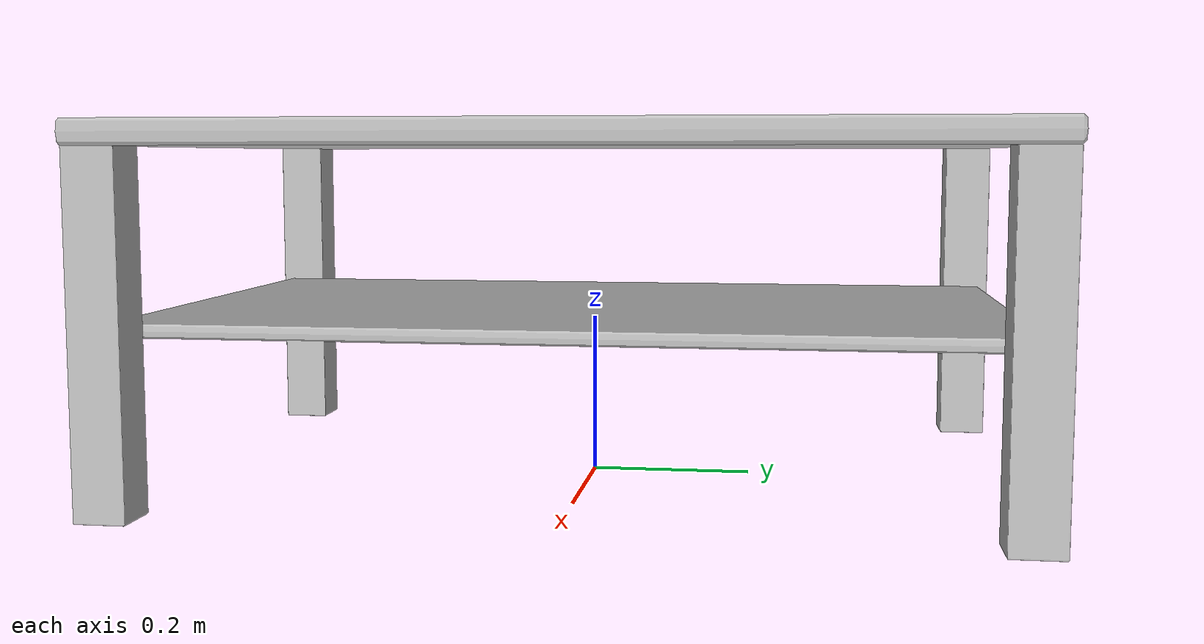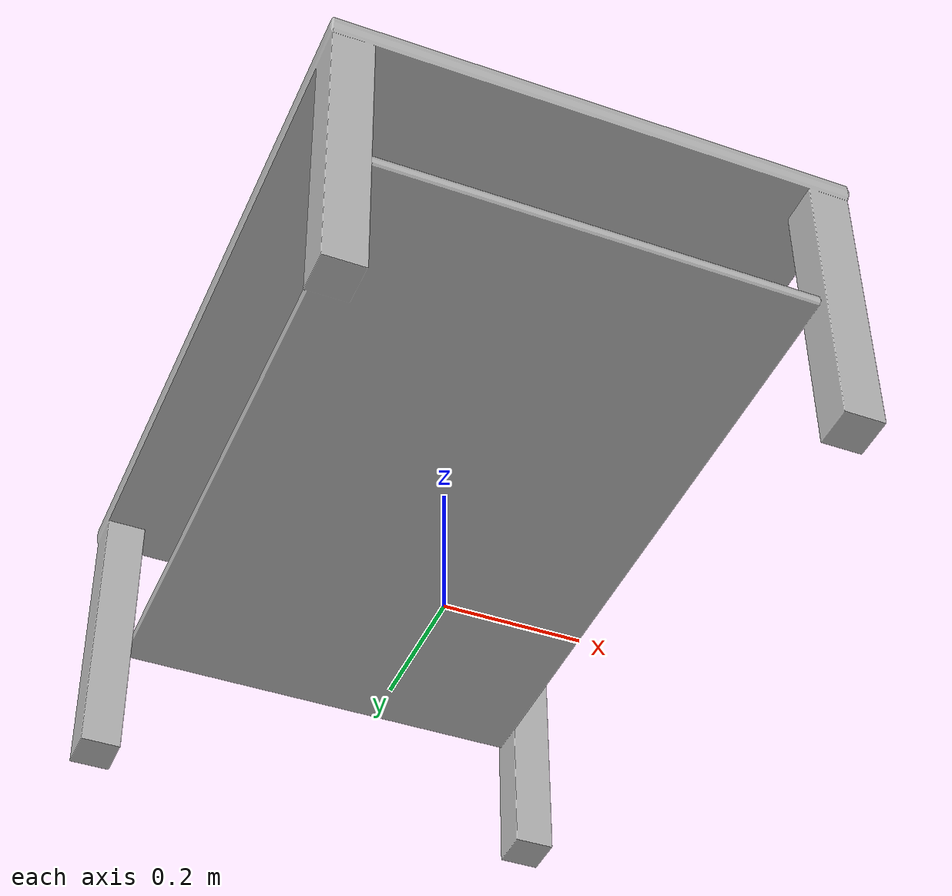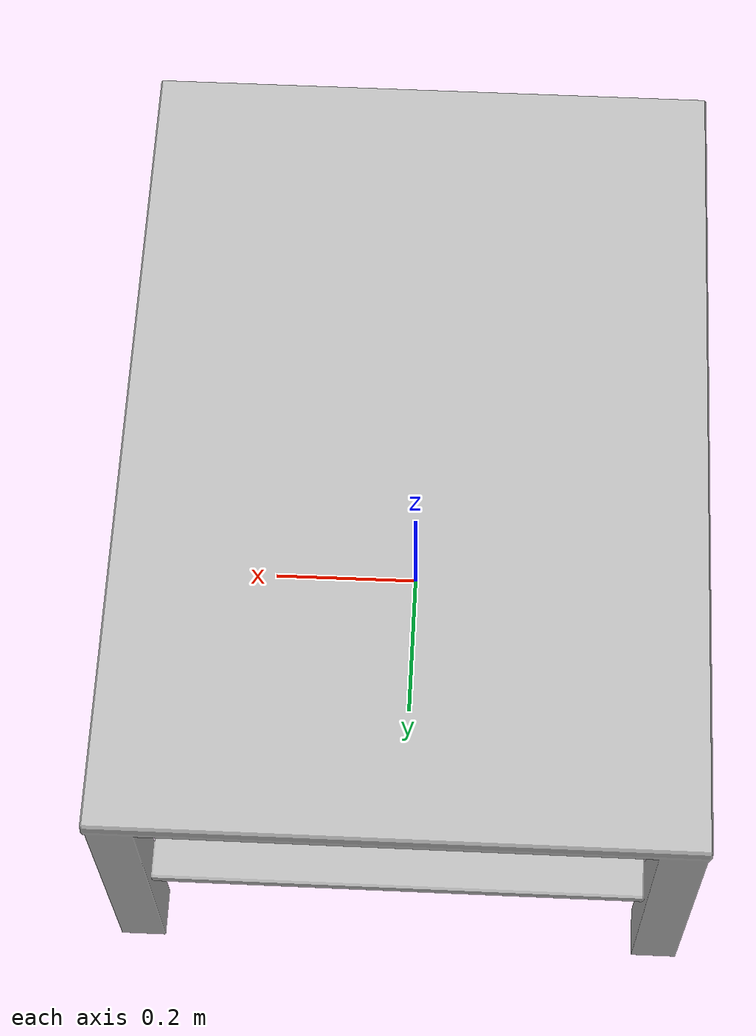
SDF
<?xml version='1.0'?>
<sdf version='1.4'>
  <model name='109'>
    <pose>0 0 0 0 0 0</pose>
    <static>true</static>
    <link name='link'>
      <collision name='collision'>
        <pose>0 0 0 0 0 0</pose>
        <geometry>
          <box>
            <size>0.75 1.08 2</size>
          </box>
        </geometry>
      </collision>
      <visual name='visual'>
        <pose>0 0 0 0 0 0</pose>
        <geometry>
          <mesh><uri>model://109/109.dae</uri></mesh>
        </geometry>
      </visual>
    </link>
  </model>
</sdf>
